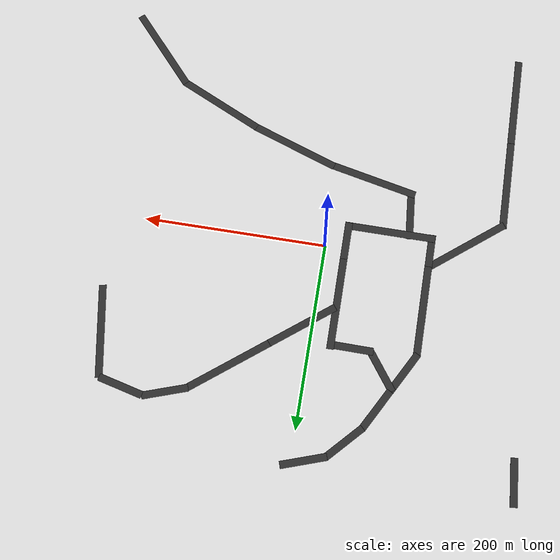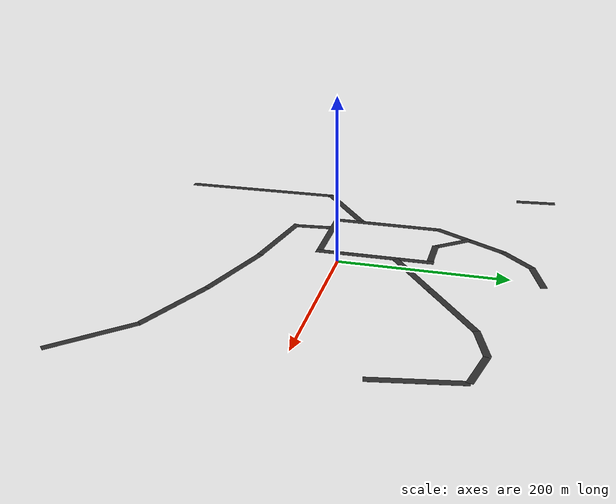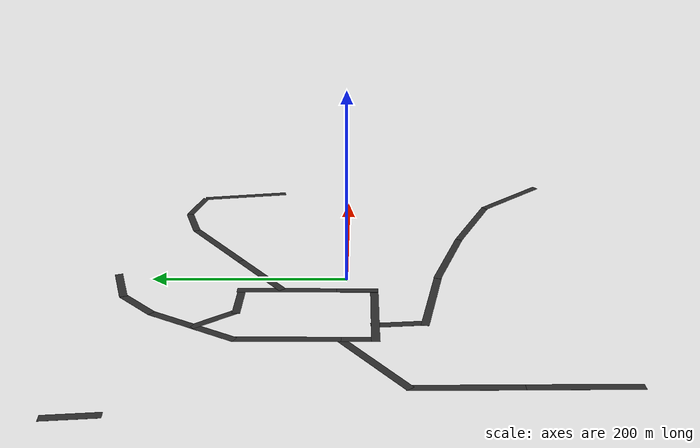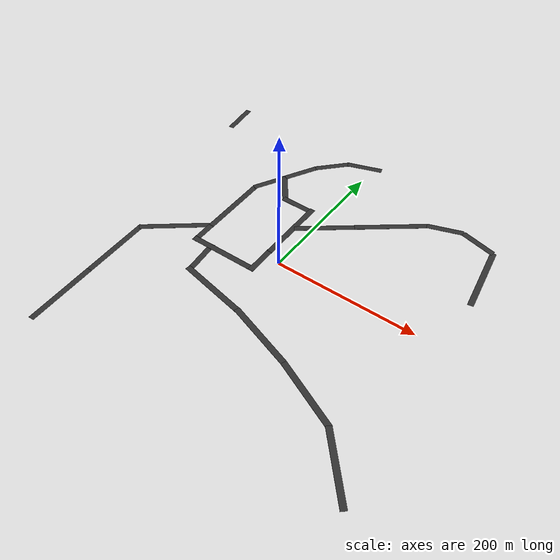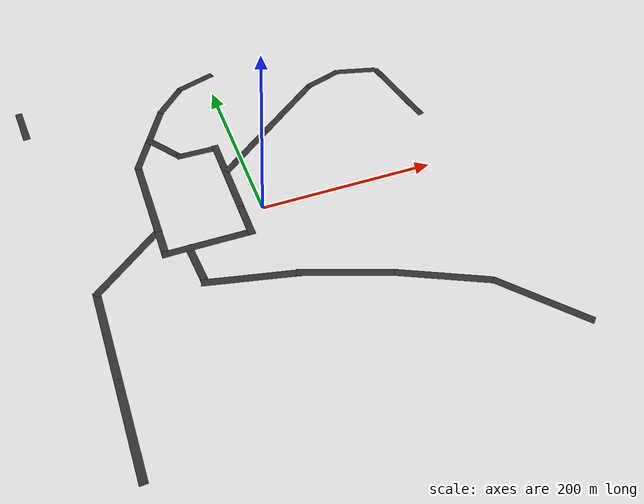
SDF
<sdf version="1.10">
 <world name="empty">
  <physics name="1ms" type="ignored">
   <max_step_size>0.001</max_step_size>
   <real_time_factor>1</real_time_factor>
   <real_time_update_rate>1000</real_time_update_rate>
  </physics>
  <plugin name="gz::sim::systems::Physics" filename="gz-sim-physics-system"/>
  <plugin name="gz::sim::systems::UserCommands" filename="gz-sim-user-commands-system"/>
  <plugin name="gz::sim::systems::SceneBroadcaster" filename="gz-sim-scene-broadcaster-system"/>
  <plugin name="gz::sim::systems::Contact" filename="gz-sim-contact-system"/>
  <plugin filename="gz-sim-sensors-system" name="gz::sim::systems::Sensors">
   <render_engine>ogre2</render_engine>
  </plugin>
  <plugin filename="gz-sim-logical-camera-system" name="gz::sim::systems::LogicalCamera">
   <render_engine>ogre2</render_engine>
  </plugin>
  <plugin filename="gz-sim-user-commands-system" name="gz::sim::systems::UserCommands"/>
  <plugin filename="gz-sim-scene-broadcaster-system" name="gz::sim::systems::SceneBroadcaster"/>
  <plugin filename="gz-sim-imu-system" name="gz::sim::systems::Imu"/>
  <plugin filename="gz-sim-navsat-system" name="gz::sim::systems::NavSat"/>
  <gravity>0 0 -9.8000000000000007</gravity>
  <magnetic_field>5.5644999999999998e-06 2.2875799999999999e-05 -4.2388400000000002e-05</magnetic_field>
  <atmosphere type="adiabatic"/>
  <scene>
   <ambient>0.400000006 0.400000006 0.400000006 1</ambient>
   <background>0.699999988 0.699999988 0.699999988 1</background>
   <shadows>true</shadows>
  </scene>
  <spherical_coordinates>
   <latitude_deg>-35.363262</latitude_deg>
   <longitude_deg>149.165237</longitude_deg>
   <elevation>584</elevation>
   <heading_deg>0</heading_deg>
   <surface_model>EARTH_WGS84</surface_model>
  </spherical_coordinates>
  <model name="axes">
   <static>1</static>
   <link name="link">
    <visual name="r">
     <cast_shadows>0</cast_shadows>
     <pose>5 0 0.1 0 0 0</pose>
     <geometry><box><size>10 0.01 0.01</size></box></geometry>
     <material>
      <ambient>1 0 0 0.8</ambient>
      <diffuse>1 0 0 0.8</diffuse>
      <emissive>1 0 0 0.8</emissive>
      <specular>0.5 0.5 0.5 0.8</specular>
     </material>
    </visual>
    <visual name="g">
     <cast_shadows>0</cast_shadows>
     <pose>0 5 0.1 0 0 0</pose>
     <geometry><box><size>0.01 10 0.01</size></box></geometry>
     <material>
      <ambient>0 1 0 0.8</ambient>
      <diffuse>0 1 0 0.8</diffuse>
      <emissive>0 1 0 0.8</emissive>
      <specular>0.5 0.5 0.5 0.8</specular>
     </material>
    </visual>
    <visual name="b">
     <cast_shadows>0</cast_shadows>
     <pose>0 0 5.1 0 0 0</pose>
     <geometry><box><size>0.01 0.01 10</size></box></geometry>
     <material>
      <ambient>0 0 1 0.8</ambient>
      <diffuse>0 0 1 0.8</diffuse>
      <emissive>0 0 1 0.8</emissive>
      <specular>0.5 0.5 0.5 0.8</specular>
     </material>
    </visual>
    <sensor name="navsat_sensor" type="navsat"><always_on>1</always_on><update_rate>1</update_rate></sensor>
   </link>
  </model>
  <model name="road">
   <static>true</static>
   <link name="link">
    <collision name="collision"><geometry><box><size>50 8 0.10000000000000001</size></box></geometry></collision>
    <visual name="visual">
     <geometry><box><size>50 8 0.10000000000000001</size></box></geometry>
     <material>
      <ambient>0.200000003 0.200000003 0.200000003 1</ambient>
      <diffuse>0.200000003 0.200000003 0.200000003 1</diffuse>
      <specular>0.100000001 0.100000001 0.100000001 1</specular>
     </material>
    </visual>
    <pose>0 0 0.050000000000000003 0 0 0</pose>
    <inertial>
     <mass>5</mass>
     <inertia>
      <ixx>0.10000000000000001</ixx>
      <ixy>0</ixy>
      <ixz>0</ixz>
      <iyy>0.10000000000000001</iyy>
      <iyz>0</iyz>
      <izz>0.10000000000000001</izz>
     </inertia>
    </inertial>
   </link>
   <pose>-231.88768005371094 216.66136169433594 0.003436001949012335 0.0012536499944453448 0.0004682929915454802 1.6636499951890273</pose>
  </model>
  <model name="road_1">
   <static>true</static>
   <link name="link">
    <collision name="collision"><geometry><box><size>100 8 0.10000000000000001</size></box></geometry></collision>
    <visual name="visual">
     <geometry><box><size>100 8 0.10000000000000001</size></box></geometry>
     <material>
      <ambient>0.200000003 0.200000003 0.200000003 1</ambient>
      <diffuse>0.200000003 0.200000003 0.200000003 1</diffuse>
      <specular>0.100000001 0.100000001 0.100000001 1</specular>
     </material>
    </visual>
    <pose>0 0 0.050000000000000003 0 0 0</pose>
    <inertial>
     <mass>5</mass>
     <inertia>
      <ixx>0.10000000000000001</ixx>
      <ixy>0</ixy>
      <ixz>0</ixz>
      <iyy>0.10000000000000001</iyy>
      <iyz>0</iyz>
      <izz>0.10000000000000001</izz>
     </inertia>
    </inertial>
   </link>
   <pose>-187.81034208198903 -201.11428243135541 6.9388939039072284e-18 0 0 1.5884700791016029</pose>
  </model>
  <model name="road_2">
   <static>true</static>
   <link name="link">
    <collision name="collision"><geometry><box><size>100 8 0.10000000000000001</size></box></geometry></collision>
    <visual name="visual">
     <geometry><box><size>100 8 0.10000000000000001</size></box></geometry>
     <material>
      <ambient>0.200000003 0.200000003 0.200000003 1</ambient>
      <diffuse>0.200000003 0.200000003 0.200000003 1</diffuse>
      <specular>0.100000001 0.100000001 0.100000001 1</specular>
     </material>
    </visual>
    <pose>0 0 0.050000000000000003 0 0 0</pose>
    <inertial>
     <mass>5</mass>
     <inertia>
      <ixx>0.10000000000000001</ixx>
      <ixy>0</ixy>
      <ixz>0</ixz>
      <iyy>0.10000000000000001</iyy>
      <iyz>0</iyz>
      <izz>0.10000000000000001</izz>
     </inertia>
    </inertial>
   </link>
   <pose>-189.61780985956838 -101.11584417923608 6.9388939039072284e-18 0 0 1.5884700791016029</pose>
  </model>
  <model name="road_3">
   <static>true</static>
   <link name="link">
    <collision name="collision"><geometry><box><size>100 8 0.10000000000000001</size></box></geometry></collision>
    <visual name="visual">
     <geometry><box><size>100 8 0.10000000000000001</size></box></geometry>
     <material>
      <ambient>0.200000003 0.200000003 0.200000003 1</ambient>
      <diffuse>0.200000003 0.200000003 0.200000003 1</diffuse>
      <specular>0.100000001 0.100000001 0.100000001 1</specular>
     </material>
    </visual>
    <pose>0 0 0.050000000000000003 0 0 0</pose>
    <inertial>
     <mass>5</mass>
     <inertia>
      <ixx>0.10000000000000001</ixx>
      <ixy>0</ixy>
      <ixz>0</ixz>
      <iyy>0.10000000000000001</iyy>
      <iyz>0</iyz>
      <izz>0.10000000000000001</izz>
     </inertia>
    </inertial>
   </link>
   <pose>-152.47034786520192 -24.210747315328462 2.4693799782760095e-10 0.00028700801366582422 0.0013071300213615873 0.66647700042759539</pose>
  </model>
  <model name="road_4">
   <static>true</static>
   <link name="link">
    <collision name="collision"><geometry><box><size>100 8 0.10000000000000001</size></box></geometry></collision>
    <visual name="visual">
     <geometry><box><size>100 8 0.10000000000000001</size></box></geometry>
     <material>
      <ambient>0.200000003 0.200000003 0.200000003 1</ambient>
      <diffuse>0.200000003 0.200000003 0.200000003 1</diffuse>
      <specular>0.100000001 0.100000001 0.100000001 1</specular>
     </material>
    </visual>
    <pose>0 0 0.050000000000000003 0 0 0</pose>
    <inertial>
     <mass>5</mass>
     <inertia>
      <ixx>0.10000000000000001</ixx>
      <ixy>0</ixy>
      <ixz>0</ixz>
      <iyy>0.10000000000000001</iyy>
      <iyz>0</iyz>
      <izz>0.10000000000000001</izz>
     </inertia>
    </inertial>
   </link>
   <pose>-115.16532562893394 54.316299329285002 0.0027088799979537725 0.0012070600549563193 0.00057789000842161612 1.5746199877664395</pose>
  </model>
  <model name="road_5">
   <static>true</static>
   <link name="link">
    <collision name="collision"><geometry><box><size>100 8 0.10000000000000001</size></box></geometry></collision>
    <visual name="visual">
     <geometry><box><size>100 8 0.10000000000000001</size></box></geometry>
     <material>
      <ambient>0.200000003 0.200000003 0.200000003 1</ambient>
      <diffuse>0.200000003 0.200000003 0.200000003 1</diffuse>
      <specular>0.100000001 0.100000001 0.100000001 1</specular>
     </material>
    </visual>
    <pose>0 0 0.050000000000000003 0 0 0</pose>
    <inertial>
     <mass>5</mass>
     <inertia>
      <ixx>0.10000000000000001</ixx>
      <ixy>0</ixy>
      <ixz>0</ixz>
      <iyy>0.10000000000000001</iyy>
      <iyz>0</iyz>
      <izz>0.10000000000000001</izz>
     </inertia>
    </inertial>
   </link>
   <pose>-115.11721263398985 18.515613175912925 0.0027088799979537725 0.0012070600549563193 0.00057789000842161612 1.5746199877664395</pose>
  </model>
  <model name="road_6">
   <static>true</static>
   <link name="link">
    <collision name="collision"><geometry><box><size>100 8 0.10000000000000001</size></box></geometry></collision>
    <visual name="visual">
     <geometry><box><size>100 8 0.10000000000000001</size></box></geometry>
     <material>
      <ambient>0.200000003 0.200000003 0.200000003 1</ambient>
      <diffuse>0.200000003 0.200000003 0.200000003 1</diffuse>
      <specular>0.100000001 0.100000001 0.100000001 1</specular>
     </material>
    </visual>
    <pose>0 0 0.050000000000000003 0 0 0</pose>
    <inertial>
     <mass>5</mass>
     <inertia>
      <ixx>0.10000000000000001</ixx>
      <ixy>0</ixy>
      <ixz>0</ixz>
      <iyy>0.10000000000000001</iyy>
      <iyz>0</iyz>
      <izz>0.10000000000000001</izz>
     </inertia>
    </inertial>
   </link>
   <pose>-22.685263390036035 60.372658135693349 0.0027088799979537725 0.0012070600549563193 0.00057789000842161612 1.5746199877664395</pose>
  </model>
  <model name="road_7">
   <static>true</static>
   <link name="link">
    <collision name="collision"><geometry><box><size>100 8 0.10000000000000001</size></box></geometry></collision>
    <visual name="visual">
     <geometry><box><size>100 8 0.10000000000000001</size></box></geometry>
     <material>
      <ambient>0.200000003 0.200000003 0.200000003 1</ambient>
      <diffuse>0.200000003 0.200000003 0.200000003 1</diffuse>
      <specular>0.100000001 0.100000001 0.100000001 1</specular>
     </material>
    </visual>
    <pose>0 0 0.050000000000000003 0 0 0</pose>
    <inertial>
     <mass>5</mass>
     <inertia>
      <ixx>0.10000000000000001</ixx>
      <ixy>0</ixy>
      <ixz>0</ixz>
      <iyy>0.10000000000000001</iyy>
      <iyz>0</iyz>
      <izz>0.10000000000000001</izz>
     </inertia>
    </inertial>
   </link>
   <pose>-22.588631948403386 18.927008527924386 0.0027088799979537725 0.0012070600549563193 0.00057789000842161612 1.5746199877664395</pose>
  </model>
  <model name="road_8">
   <static>true</static>
   <link name="link">
    <collision name="collision"><geometry><box><size>100 8 0.10000000000000001</size></box></geometry></collision>
    <visual name="visual">
     <geometry><box><size>100 8 0.10000000000000001</size></box></geometry>
     <material>
      <ambient>0.200000003 0.200000003 0.200000003 1</ambient>
      <diffuse>0.200000003 0.200000003 0.200000003 1</diffuse>
      <specular>0.100000001 0.100000001 0.100000001 1</specular>
     </material>
    </visual>
    <pose>0 0 0.050000000000000003 0 0 0</pose>
    <inertial>
     <mass>5</mass>
     <inertia>
      <ixx>0.10000000000000001</ixx>
      <ixy>0</ixy>
      <ixz>0</ixz>
      <iyy>0.10000000000000001</iyy>
      <iyz>0</iyz>
      <izz>0.10000000000000001</izz>
     </inertia>
    </inertial>
   </link>
   <pose>-68.426176314460676 -27.429842105370533 0.0027088799979537101 -0.00058424998011437313 0.0012039900066826163 -0.001451889980868331</pose>
  </model>
  <model name="road_10">
   <static>true</static>
   <link name="link">
    <collision name="collision"><geometry><box><size>100 8 0.10000000000000001</size></box></geometry></collision>
    <visual name="visual">
     <geometry><box><size>100 8 0.10000000000000001</size></box></geometry>
     <material>
      <ambient>0.200000003 0.200000003 0.200000003 1</ambient>
      <diffuse>0.200000003 0.200000003 0.200000003 1</diffuse>
      <specular>0.100000001 0.100000001 0.100000001 1</specular>
     </material>
    </visual>
    <pose>0 0 0.050000000000000003 0 0 0</pose>
    <inertial>
     <mass>5</mass>
     <inertia>
      <ixx>0.10000000000000001</ixx>
      <ixy>0</ixy>
      <ixz>0</ixz>
      <iyy>0.10000000000000001</iyy>
      <iyz>0</iyz>
      <izz>0.10000000000000001</izz>
     </inertia>
    </inertial>
   </link>
   <pose>-41.152026085067838 -83.999431660561086 0.0027088799979537725 -0.00081478001015788427 0.0010616399914485449 -0.20425600024224674</pose>
  </model>
  <model name="road_11">
   <static>true</static>
   <link name="link">
    <collision name="collision"><geometry><box><size>100 8 0.10000000000000001</size></box></geometry></collision>
    <visual name="visual">
     <geometry><box><size>100 8 0.10000000000000001</size></box></geometry>
     <material>
      <ambient>0.200000003 0.200000003 0.200000003 1</ambient>
      <diffuse>0.200000003 0.200000003 0.200000003 1</diffuse>
      <specular>0.100000001 0.100000001 0.100000001 1</specular>
     </material>
    </visual>
    <pose>0 0 0.050000000000000003 0 0 0</pose>
    <inertial>
     <mass>5</mass>
     <inertia>
      <ixx>0.10000000000000001</ixx>
      <ixy>0</ixy>
      <ixz>0</ixz>
      <iyy>0.10000000000000001</iyy>
      <iyz>0</iyz>
      <izz>0.10000000000000001</izz>
     </inertia>
    </inertial>
   </link>
   <pose>51.191162453994508 -108.98113385016481 0.002708879997953835 -0.0009407450233629163 0.00095181105870481314 -0.32921700817840643</pose>
  </model>
  <model name="road_12">
   <static>true</static>
   <link name="link">
    <collision name="collision"><geometry><box><size>100 8 0.10000000000000001</size></box></geometry></collision>
    <visual name="visual">
     <geometry><box><size>100 8 0.10000000000000001</size></box></geometry>
     <material>
      <ambient>0.200000003 0.200000003 0.200000003 1</ambient>
      <diffuse>0.200000003 0.200000003 0.200000003 1</diffuse>
      <specular>0.100000001 0.100000001 0.100000001 1</specular>
     </material>
    </visual>
    <pose>0 0 0.050000000000000003 0 0 0</pose>
    <inertial>
     <mass>5</mass>
     <inertia>
      <ixx>0.10000000000000001</ixx>
      <ixy>0</ixy>
      <ixz>0</ixz>
      <iyy>0.10000000000000001</iyy>
      <iyz>0</iyz>
      <izz>0.10000000000000001</izz>
     </inertia>
    </inertial>
   </link>
   <pose>142.90260013709957 -145.46448238834412 0.0027088799979537101 -0.0010283900344942561 0.00085636402320417326 -0.42608499379626674</pose>
  </model>
  <model name="road_13">
   <static>true</static>
   <link name="link">
    <collision name="collision"><geometry><box><size>100 8 0.10000000000000001</size></box></geometry></collision>
    <visual name="visual">
     <geometry><box><size>100 8 0.10000000000000001</size></box></geometry>
     <material>
      <ambient>0.200000003 0.200000003 0.200000003 1</ambient>
      <diffuse>0.200000003 0.200000003 0.200000003 1</diffuse>
      <specular>0.100000001 0.100000001 0.100000001 1</specular>
     </material>
    </visual>
    <pose>0 0 0.050000000000000003 0 0 0</pose>
    <inertial>
     <mass>5</mass>
     <inertia>
      <ixx>0.10000000000000001</ixx>
      <ixy>0</ixy>
      <ixz>0</ixz>
      <iyy>0.10000000000000001</iyy>
      <iyz>0</iyz>
      <izz>0.10000000000000001</izz>
     </inertia>
    </inertial>
   </link>
   <pose>220.14349001756682 -201.92856753011523 0.0027088799979536893 -0.0012829499990571066 0.00038077503550353666 -0.83194901269426413</pose>
  </model>
  <model name="road_14">
   <static>true</static>
   <link name="link">
    <collision name="collision"><geometry><box><size>100 8 0.10000000000000001</size></box></geometry></collision>
    <visual name="visual">
     <geometry><box><size>100 8 0.10000000000000001</size></box></geometry>
     <material>
      <ambient>0.200000003 0.200000003 0.200000003 1</ambient>
      <diffuse>0.200000003 0.200000003 0.200000003 1</diffuse>
      <specular>0.100000001 0.100000001 0.100000001 1</specular>
     </material>
    </visual>
    <pose>0 0 0.050000000000000003 0 0 0</pose>
    <inertial>
     <mass>5</mass>
     <inertia>
      <ixx>0.10000000000000001</ixx>
      <ixy>0</ixy>
      <ixz>0</ixz>
      <iyy>0.10000000000000001</iyy>
      <iyz>0</iyz>
      <izz>0.10000000000000001</izz>
     </inertia>
    </inertial>
   </link>
   <pose>17.871465744909628 95.420580769456649 0.0027088799979537725 0.00027610703544366611 0.0013094700540805383 0.65814203244173231</pose>
  </model>
  <model name="road_15">
   <static>true</static>
   <link name="link">
    <collision name="collision"><geometry><box><size>100 8 0.10000000000000001</size></box></geometry></collision>
    <visual name="visual">
     <geometry><box><size>100 8 0.10000000000000001</size></box></geometry>
     <material>
      <ambient>0.200000003 0.200000003 0.200000003 1</ambient>
      <diffuse>0.200000003 0.200000003 0.200000003 1</diffuse>
      <specular>0.100000001 0.100000001 0.100000001 1</specular>
     </material>
    </visual>
    <pose>0 0 0.050000000000000003 0 0 0</pose>
    <inertial>
     <mass>5</mass>
     <inertia>
      <ixx>0.10000000000000001</ixx>
      <ixy>0</ixy>
      <ixz>0</ixz>
      <iyy>0.10000000000000001</iyy>
      <iyz>0</iyz>
      <izz>0.10000000000000001</izz>
     </inertia>
    </inertial>
   </link>
   <pose>81.93062941816288 144.99968310114832 0.0027088799979537725 0.00027610703544366611 0.0013094700540805383 0.65814203244173231</pose>
  </model>
  <model name="road_17">
   <static>true</static>
   <link name="link">
    <collision name="collision"><geometry><box><size>100 8 0.10000000000000001</size></box></geometry></collision>
    <visual name="visual">
     <geometry><box><size>100 8 0.10000000000000001</size></box></geometry>
     <material>
      <ambient>0.200000003 0.200000003 0.200000003 1</ambient>
      <diffuse>0.200000003 0.200000003 0.200000003 1</diffuse>
      <specular>0.100000001 0.100000001 0.100000001 1</specular>
     </material>
    </visual>
    <pose>0 0 0.050000000000000003 0 0 0</pose>
    <inertial>
     <mass>5</mass>
     <inertia>
      <ixx>0.10000000000000001</ixx>
      <ixy>0</ixy>
      <ixz>0</ixz>
      <iyy>0.10000000000000001</iyy>
      <iyz>0</iyz>
      <izz>0.10000000000000001</izz>
     </inertia>
    </inertial>
   </link>
   <pose>223.04474318949053 129.77783142598796 -0.043128099292516771 -0.0012848500141161841 -0.00037431994974670139 -1.4039499864475655</pose>
  </model>
  <model name="road_9">
   <static>true</static>
   <link name="link">
    <collision name="collision"><geometry><box><size>50 8 0.10000000000000001</size></box></geometry></collision>
    <visual name="visual">
     <geometry><box><size>50 8 0.10000000000000001</size></box></geometry>
     <material>
      <ambient>0.200000003 0.200000003 0.200000003 1</ambient>
      <diffuse>0.200000003 0.200000003 0.200000003 1</diffuse>
      <specular>0.100000001 0.100000001 0.100000001 1</specular>
     </material>
    </visual>
    <pose>0 0 0.050000000000000003 0 0 0</pose>
    <inertial>
     <mass>5</mass>
     <inertia>
      <ixx>0.10000000000000001</ixx>
      <ixy>0</ixy>
      <ixz>0</ixz>
      <iyy>0.10000000000000001</iyy>
      <iyz>0</iyz>
      <izz>0.10000000000000001</izz>
     </inertia>
    </inertial>
   </link>
   <pose>-44.043845005631468 105.60593432718095 -0.0049198698252438944 -0.00059516898984128964 0.0011986299788154257 -0.010541000485189174</pose>
  </model>
  <model name="road_18">
   <static>true</static>
   <link name="link">
    <collision name="collision"><geometry><box><size>50 8 0.10000000000000001</size></box></geometry></collision>
    <visual name="visual">
     <geometry><box><size>50 8 0.10000000000000001</size></box></geometry>
     <material>
      <ambient>0.200000003 0.200000003 0.200000003 1</ambient>
      <diffuse>0.200000003 0.200000003 0.200000003 1</diffuse>
      <specular>0.100000001 0.100000001 0.100000001 1</specular>
     </material>
    </visual>
    <pose>0 0 0.050000000000000003 0 0 0</pose>
    <inertial>
     <mass>5</mass>
     <inertia>
      <ixx>0.10000000000000001</ixx>
      <ixy>0</ixy>
      <ixz>0</ixz>
      <iyy>0.10000000000000001</iyy>
      <iyz>0</iyz>
      <izz>0.10000000000000001</izz>
     </inertia>
    </inertial>
   </link>
   <pose>-79.73865115739676 124.42062153995265 -0.0049198698252439499 -0.0013133800179636144 0.00025684399505205712 -0.92733798297809222</pose>
  </model>
  <model name="road_19">
   <static>true</static>
   <link name="link">
    <collision name="collision"><geometry><box><size>50 8 0.10000000000000001</size></box></geometry></collision>
    <visual name="visual">
     <geometry><box><size>50 8 0.10000000000000001</size></box></geometry>
     <material>
      <ambient>0.200000003 0.200000003 0.200000003 1</ambient>
      <diffuse>0.200000003 0.200000003 0.200000003 1</diffuse>
      <specular>0.100000001 0.100000001 0.100000001 1</specular>
     </material>
    </visual>
    <pose>0 0 0.050000000000000003 0 0 0</pose>
    <inertial>
     <mass>5</mass>
     <inertia>
      <ixx>0.10000000000000001</ixx>
      <ixy>0</ixy>
      <ixz>0</ixz>
      <iyy>0.10000000000000001</iyy>
      <iyz>0</iyz>
      <izz>0.10000000000000001</izz>
     </inertia>
    </inertial>
   </link>
   <pose>-104.36946535523072 122.93015963519389 -0.0049198698252440054 -0.00077655997879471565 -0.0010899100412654539 -2.0721800621794526</pose>
  </model>
  <model name="road_20">
   <static>true</static>
   <link name="link">
    <collision name="collision"><geometry><box><size>50 8 0.10000000000000001</size></box></geometry></collision>
    <visual name="visual">
     <geometry><box><size>50 8 0.10000000000000001</size></box></geometry>
     <material>
      <ambient>0.200000003 0.200000003 0.200000003 1</ambient>
      <diffuse>0.200000003 0.200000003 0.200000003 1</diffuse>
      <specular>0.100000001 0.100000001 0.100000001 1</specular>
     </material>
    </visual>
    <pose>0 0 0.050000000000000003 0 0 0</pose>
    <inertial>
     <mass>5</mass>
     <inertia>
      <ixx>0.10000000000000001</ixx>
      <ixy>0</ixy>
      <ixz>0</ixz>
      <iyy>0.10000000000000001</iyy>
      <iyz>0</iyz>
      <izz>0.10000000000000001</izz>
     </inertia>
    </inertial>
   </link>
   <pose>-80.615695509475998 166.15079736421049 -0.0049198698252440054 -0.00077655997879471565 -0.0010899100412654539 -2.0721800621794526</pose>
  </model>
  <model name="road_21">
   <static>true</static>
   <link name="link">
    <collision name="collision"><geometry><box><size>50 8 0.10000000000000001</size></box></geometry></collision>
    <visual name="visual">
     <geometry><box><size>50 8 0.10000000000000001</size></box></geometry>
     <material>
      <ambient>0.200000003 0.200000003 0.200000003 1</ambient>
      <diffuse>0.200000003 0.200000003 0.200000003 1</diffuse>
      <specular>0.100000001 0.100000001 0.100000001 1</specular>
     </material>
    </visual>
    <pose>0 0 0.050000000000000003 0 0 0</pose>
    <inertial>
     <mass>5</mass>
     <inertia>
      <ixx>0.10000000000000001</ixx>
      <ixy>0</ixy>
      <ixz>0</ixz>
      <iyy>0.10000000000000001</iyy>
      <iyz>0</iyz>
      <izz>0.10000000000000001</izz>
     </inertia>
    </inertial>
   </link>
   <pose>-52.329343411103608 204.76412585967165 -0.0049198698252439707 -0.00047220901445096789 -0.0012521899838132638 -2.3306299694402339</pose>
  </model>
  <model name="road_22">
   <static>true</static>
   <link name="link">
    <collision name="collision"><geometry><box><size>50 8 0.10000000000000001</size></box></geometry></collision>
    <visual name="visual">
     <geometry><box><size>50 8 0.10000000000000001</size></box></geometry>
     <material>
      <ambient>0.200000003 0.200000003 0.200000003 1</ambient>
      <diffuse>0.200000003 0.200000003 0.200000003 1</diffuse>
      <specular>0.100000001 0.100000001 0.100000001 1</specular>
     </material>
    </visual>
    <pose>0 0 0.050000000000000003 0 0 0</pose>
    <inertial>
     <mass>5</mass>
     <inertia>
      <ixx>0.10000000000000001</ixx>
      <ixy>0</ixy>
      <ixz>0</ixz>
      <iyy>0.10000000000000001</iyy>
      <iyz>0</iyz>
      <izz>0.10000000000000001</izz>
     </inertia>
    </inertial>
   </link>
   <pose>-13.304231606097609 229.61336933912617 -0.0049198698252439499 0.00016471099364131312 -0.0013280900209642057 -2.8146399954527026</pose>
  </model>
  <model name="road_16">
   <static>true</static>
   <link name="link">
    <collision name="collision"><geometry><box><size>50 8 0.10000000000000001</size></box></geometry></collision>
    <visual name="visual">
     <geometry><box><size>50 8 0.10000000000000001</size></box></geometry>
     <material>
      <ambient>0.200000003 0.200000003 0.200000003 1</ambient>
      <diffuse>0.200000003 0.200000003 0.200000003 1</diffuse>
      <specular>0.100000001 0.100000001 0.100000001 1</specular>
     </material>
    </visual>
    <pose>0 0 0.050000000000000003 0 0 0</pose>
    <inertial>
     <mass>5</mass>
     <inertia>
      <ixx>0.10000000000000001</ixx>
      <ixy>0</ixy>
      <ixz>0</ixz>
      <iyy>0.10000000000000001</iyy>
      <iyz>0</iyz>
      <izz>0.10000000000000001</izz>
     </inertia>
    </inertial>
   </link>
   <pose>142.74683151908101 182.43034715079705 -0.0049198698252439499 0.00016471099364131312 -0.0013280900209642057 -2.8146399954527026</pose>
  </model>
  <model name="road_23">
   <static>true</static>
   <link name="link">
    <collision name="collision"><geometry><box><size>50 8 0.10000000000000001</size></box></geometry></collision>
    <visual name="visual">
     <geometry><box><size>50 8 0.10000000000000001</size></box></geometry>
     <material>
      <ambient>0.200000003 0.200000003 0.200000003 1</ambient>
      <diffuse>0.200000003 0.200000003 0.200000003 1</diffuse>
      <specular>0.100000001 0.100000001 0.100000001 1</specular>
     </material>
    </visual>
    <pose>0 0 0.050000000000000003 0 0 0</pose>
    <inertial>
     <mass>5</mass>
     <inertia>
      <ixx>0.10000000000000001</ixx>
      <ixy>0</ixy>
      <ixz>0</ixz>
      <iyy>0.10000000000000001</iyy>
      <iyz>0</iyz>
      <izz>0.10000000000000001</izz>
     </inertia>
    </inertial>
   </link>
   <pose>190.33145813995051 183.98324923843927 -0.0049198698252439499 0.0008449369634454312 -0.001037799968342284 2.90861999901067</pose>
  </model>
  <model name="road_24">
   <static>true</static>
   <link name="link">
    <collision name="collision"><geometry><box><size>50 8 0.10000000000000001</size></box></geometry></collision>
    <visual name="visual">
     <geometry><box><size>50 8 0.10000000000000001</size></box></geometry>
     <material>
      <ambient>0.200000003 0.200000003 0.200000003 1</ambient>
      <diffuse>0.200000003 0.200000003 0.200000003 1</diffuse>
      <specular>0.100000001 0.100000001 0.100000001 1</specular>
     </material>
    </visual>
    <pose>0 0 0.050000000000000003 0 0 0</pose>
    <inertial>
     <mass>5</mass>
     <inertia>
      <ixx>0.10000000000000001</ixx>
      <ixy>0</ixy>
      <ixz>0</ixz>
      <iyy>0.10000000000000001</iyy>
      <iyz>0</iyz>
      <izz>0.10000000000000001</izz>
     </inertia>
    </inertial>
   </link>
   <pose>-88.05552832648047 -48.050393900028652 -0.0049198698252438944 0.0012536499944453448 0.0004682929915454802 1.6636499951890273</pose>
  </model>
  <light name="sun" type="directional">
   <pose>0 0 10 0 0 0</pose>
   <intensity>1</intensity>
   <direction>-0.5 0.10000000000000001 -0.90000000000000002</direction>
   <diffuse>0.800000012 0.800000012 0.800000012 1</diffuse>
   <specular>0.200000003 0.200000003 0.200000003 1</specular>
   <attenuation>
    <range>1000</range>
    <linear>0.01</linear>
    <constant>0.90000000000000002</constant>
    <quadratic>0.001</quadratic>
   </attenuation>
   <spot><inner_angle>0</inner_angle><outer_angle>0</outer_angle><falloff>0</falloff></spot>
  </light>
 </world>
</sdf>
